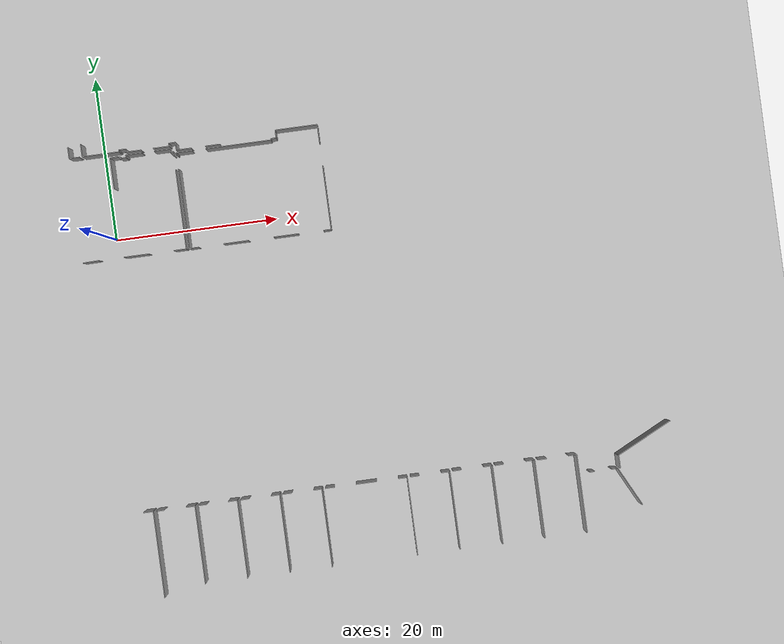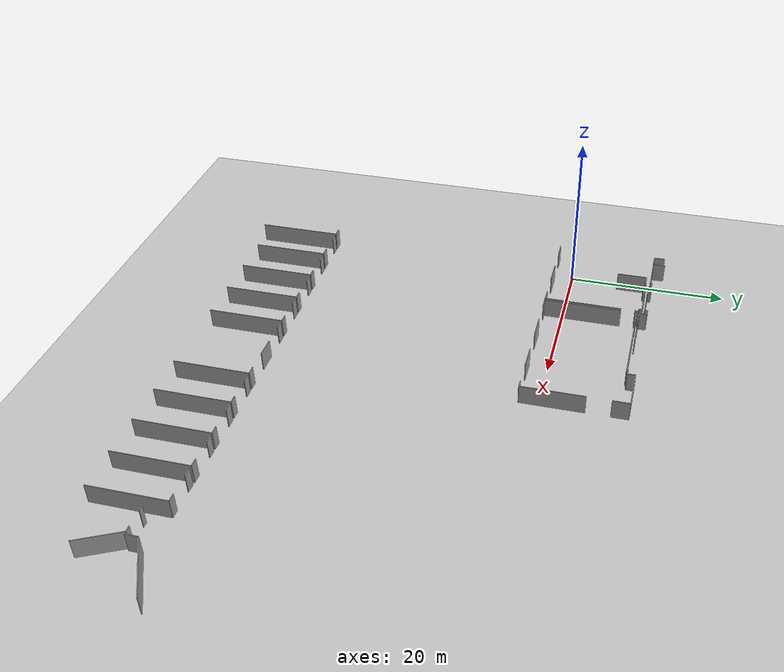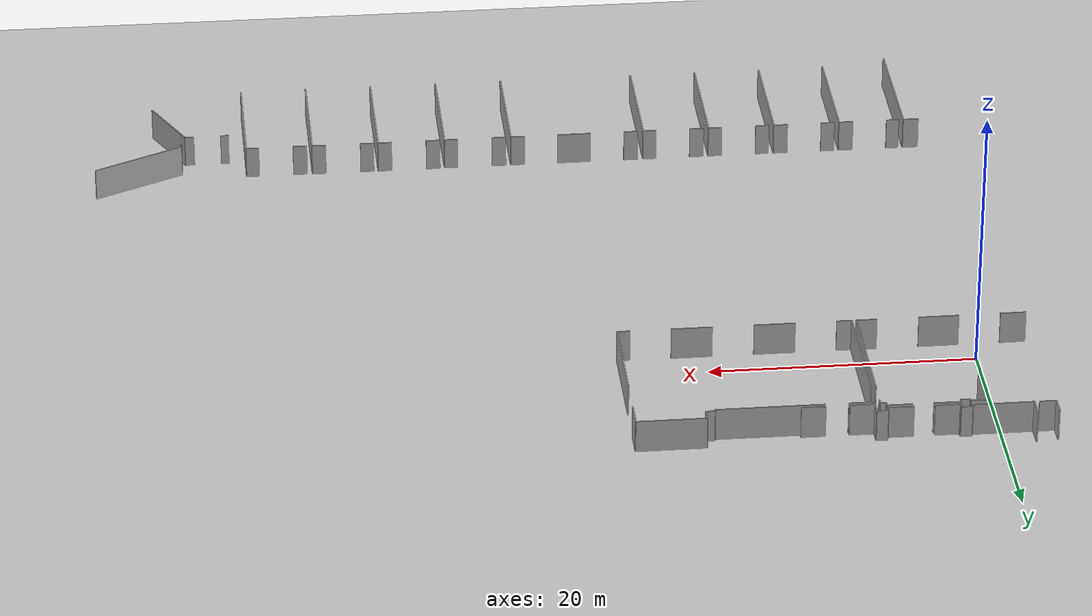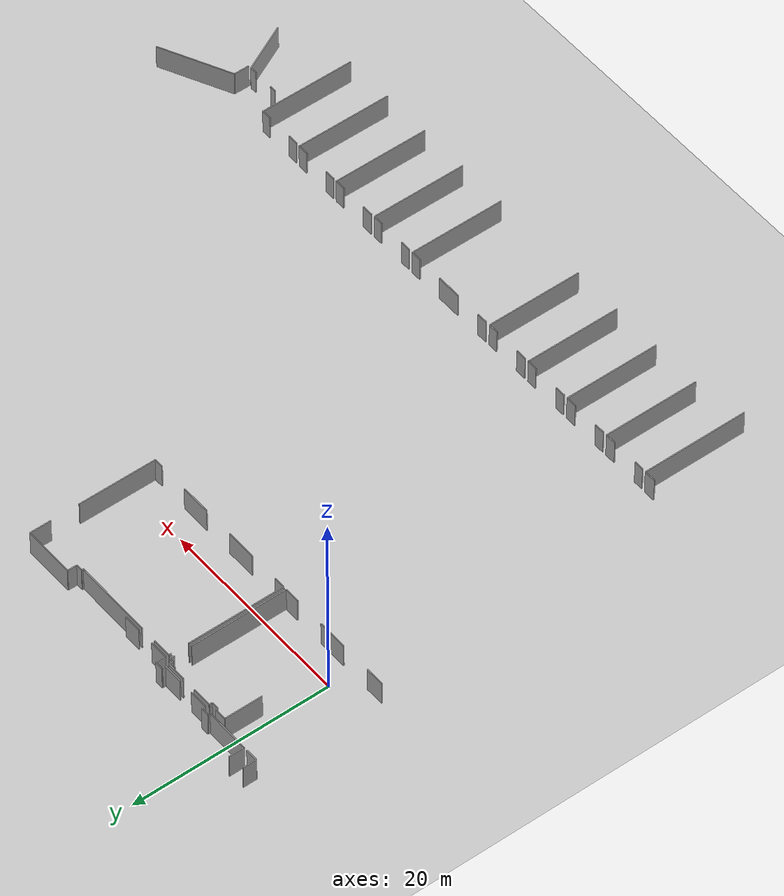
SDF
<sdf version="1.6">
 <world name="default">
  <model name="ground_plane">
   <static>1</static>
   <link name="link">
    <collision name="collision">
     <geometry><plane><normal>0 0 1</normal><size>100 100</size></plane></geometry>
     <surface><friction><ode><mu>100</mu><mu2>50</mu2></ode></friction></surface>
    </collision>
    <visual name="visual">
     <cast_shadows>0</cast_shadows>
     <geometry><plane><normal>0 0 1</normal><size>100 100</size></plane></geometry>
     <material>
      <script><uri>file://media/materials/scripts/gazebo.material</uri><name>Gazebo/Grey</name></script>
     </material>
    </visual>
   </link>
  </model>
  <model name="0510045926_A-40">
   <static>1</static>
   <link name="Wall_1117">
    <collision name="Wall_1117_Collision">
     <geometry><box><size>1.24505815983 0.1 2.5</size></box></geometry>
     <pose>0.622529079913 0 1.25 0 0 0</pose>
    </collision>
    <visual name="Wall_1117_Visual">
     <pose>0.622529079913 0 1.25 0 0 0</pose>
     <geometry><box><size>1.24505815983 0.1 2.5</size></box></geometry>
     <material>
      <script><uri>file://media/materials/scripts/gazebo.material</uri><name>Gazebo/Grey</name></script>
      <ambient>1 1 1 1</ambient>
     </material>
    </visual>
    <pose>131.193110932 -90.6598300578 0 0 0 3.14159265359</pose>
   </link>
   <link name="Wall_1118">
    <collision name="Wall_1118_Collision">
     <geometry><box><size>1.37552908626 0.1 2.5</size></box></geometry>
     <pose>0.68776454313 0 1.25 0 0 0</pose>
    </collision>
    <visual name="Wall_1118_Visual">
     <pose>0.68776454313 0 1.25 0 0 0</pose>
     <geometry><box><size>1.37552908626 0.1 2.5</size></box></geometry>
     <material>
      <script><uri>file://media/materials/scripts/gazebo.material</uri><name>Gazebo/Grey</name></script>
      <ambient>1 1 1 1</ambient>
     </material>
    </visual>
    <pose>129.948052772 -90.6598300578 0 0 0 1.57079632679</pose>
   </link>
   <link name="Wall_1195">
    <collision name="Wall_1195_Collision">
     <geometry><box><size>3.79584092193 0.1 2.5</size></box></geometry>
     <pose>1.89792046096 0 1.25 0 0 0</pose>
    </collision>
    <visual name="Wall_1195_Visual">
     <pose>1.89792046096 0 1.25 0 0 0</pose>
     <geometry><box><size>3.79584092193 0.1 2.5</size></box></geometry>
     <material>
      <script><uri>file://media/materials/scripts/gazebo.material</uri><name>Gazebo/Grey</name></script>
      <ambient>1 1 1 1</ambient>
     </material>
    </visual>
    <pose>134.901378956 -95.0443131556 0 0 0 1.57079632679</pose>
   </link>
   <link name="Wall_1196">
    <collision name="Wall_1196_Collision">
     <geometry><box><size>1.19022991059 0.1 2.5</size></box></geometry>
     <pose>0.595114955293 0 1.25 0 0 0</pose>
    </collision>
    <visual name="Wall_1196_Visual">
     <pose>0.595114955293 0 1.25 0 0 0</pose>
     <geometry><box><size>1.19022991059 0.1 2.5</size></box></geometry>
     <material>
      <script><uri>file://media/materials/scripts/gazebo.material</uri><name>Gazebo/Grey</name></script>
      <ambient>1 1 1 1</ambient>
     </material>
    </visual>
    <pose>134.901378956 -91.2484722337 0 0 0 0.0</pose>
   </link>
   <link name="Wall_1197">
    <collision name="Wall_1197_Collision">
     <geometry><box><size>0.208651948497 0.1 2.5</size></box></geometry>
     <pose>0.104325974248 0 1.25 0 0 0</pose>
    </collision>
    <visual name="Wall_1197_Visual">
     <pose>0.104325974248 0 1.25 0 0 0</pose>
     <geometry><box><size>0.208651948497 0.1 2.5</size></box></geometry>
     <material>
      <script><uri>file://media/materials/scripts/gazebo.material</uri><name>Gazebo/Grey</name></script>
      <ambient>1 1 1 1</ambient>
     </material>
    </visual>
    <pose>136.091608866 -91.2484722337 0 0 0 -1.57079632679</pose>
   </link>
   <link name="Wall_1198">
    <collision name="Wall_1198_Collision">
     <geometry><box><size>0.754396096026 0.1 2.5</size></box></geometry>
     <pose>0.377198048013 0 1.25 0 0 0</pose>
    </collision>
    <visual name="Wall_1198_Visual">
     <pose>0.377198048013 0 1.25 0 0 0</pose>
     <geometry><box><size>0.754396096026 0.1 2.5</size></box></geometry>
     <material>
      <script><uri>file://media/materials/scripts/gazebo.material</uri><name>Gazebo/Grey</name></script>
      <ambient>1 1 1 1</ambient>
     </material>
    </visual>
    <pose>136.091608866 -91.4571241822 0 0 0 0.0</pose>
   </link>
   <link name="Wall_1199">
    <collision name="Wall_1199_Collision">
     <geometry><box><size>0.312977922745 0.1 2.5</size></box></geometry>
     <pose>0.156488961373 0 1.25 0 0 0</pose>
    </collision>
    <visual name="Wall_1199_Visual">
     <pose>0.156488961373 0 1.25 0 0 0</pose>
     <geometry><box><size>0.312977922745 0.1 2.5</size></box></geometry>
     <material>
      <script><uri>file://media/materials/scripts/gazebo.material</uri><name>Gazebo/Grey</name></script>
      <ambient>1 1 1 1</ambient>
     </material>
    </visual>
    <pose>136.846004962 -91.4571241822 0 0 0 1.57079632679</pose>
   </link>
   <link name="Wall_1200">
    <collision name="Wall_1200_Collision">
     <geometry><box><size>1.97356313816 0.1 2.5</size></box></geometry>
     <pose>0.986781569078 0 1.25 0 0 0</pose>
    </collision>
    <visual name="Wall_1200_Visual">
     <pose>0.986781569078 0 1.25 0 0 0</pose>
     <geometry><box><size>1.97356313816 0.1 2.5</size></box></geometry>
     <material>
      <script><uri>file://media/materials/scripts/gazebo.material</uri><name>Gazebo/Grey</name></script>
      <ambient>1 1 1 1</ambient>
     </material>
    </visual>
    <pose>136.846004962 -91.1441462594 0 0 0 0.0</pose>
   </link>
   <link name="Wall_1201">
    <collision name="Wall_1201_Collision">
     <geometry><box><size>1.89360527468 0.1 2.5</size></box></geometry>
     <pose>0.94680263734 0 1.25 0 0 0</pose>
    </collision>
    <visual name="Wall_1201_Visual">
     <pose>0.94680263734 0 1.25 0 0 0</pose>
     <geometry><box><size>1.89360527468 0.1 2.5</size></box></geometry>
     <material>
      <script><uri>file://media/materials/scripts/gazebo.material</uri><name>Gazebo/Grey</name></script>
      <ambient>1 1 1 1</ambient>
     </material>
    </visual>
    <pose>140.317191575 -91.1441462594 0 0 0 0.0</pose>
   </link>
   <link name="Wall_1202">
    <collision name="Wall_1202_Collision">
     <geometry><box><size>0.370598351345 0.1 2.5</size></box></geometry>
     <pose>0.185299175673 0 1.25 0 0 0</pose>
    </collision>
    <visual name="Wall_1202_Visual">
     <pose>0.185299175673 0 1.25 0 0 0</pose>
     <geometry><box><size>0.370598351345 0.1 2.5</size></box></geometry>
     <material>
      <script><uri>file://media/materials/scripts/gazebo.material</uri><name>Gazebo/Grey</name></script>
      <ambient>1 1 1 1</ambient>
     </material>
    </visual>
    <pose>142.21079685 -91.1441462594 0 0 0 -1.57079632679</pose>
   </link>
   <link name="Wall_1203">
    <collision name="Wall_1203_Collision">
     <geometry><box><size>0.436595318023 0.1 2.5</size></box></geometry>
     <pose>0.218297659011 0 1.25 0 0 0</pose>
    </collision>
    <visual name="Wall_1203_Visual">
     <pose>0.218297659011 0 1.25 0 0 0</pose>
     <geometry><box><size>0.436595318023 0.1 2.5</size></box></geometry>
     <material>
      <script><uri>file://media/materials/scripts/gazebo.material</uri><name>Gazebo/Grey</name></script>
      <ambient>1 1 1 1</ambient>
     </material>
    </visual>
    <pose>142.21079685 -91.5147446108 0 0 0 0.0</pose>
   </link>
   <link name="Wall_1204">
    <collision name="Wall_1204_Collision">
     <geometry><box><size>0.495992588033 0.1 2.5</size></box></geometry>
     <pose>0.247996294016 0 1.25 0 0 0</pose>
    </collision>
    <visual name="Wall_1204_Visual">
     <pose>0.247996294016 0 1.25 0 0 0</pose>
     <geometry><box><size>0.495992588033 0.1 2.5</size></box></geometry>
     <material>
      <script><uri>file://media/materials/scripts/gazebo.material</uri><name>Gazebo/Grey</name></script>
      <ambient>1 1 1 1</ambient>
     </material>
    </visual>
    <pose>142.647392168 -91.5147446108 0 0 0 -1.57079632679</pose>
   </link>
   <link name="Wall_1205">
    <collision name="Wall_1205_Collision">
     <geometry><box><size>9.75079799217 0.1 2.5</size></box></geometry>
     <pose>4.87539899608 0 1.25 0 0 0</pose>
    </collision>
    <visual name="Wall_1205_Visual">
     <pose>4.87539899608 0 1.25 0 0 0</pose>
     <geometry><box><size>9.75079799217 0.1 2.5</size></box></geometry>
     <material>
      <script><uri>file://media/materials/scripts/gazebo.material</uri><name>Gazebo/Grey</name></script>
      <ambient>1 1 1 1</ambient>
     </material>
    </visual>
    <pose>142.647392168 -93.7284351738 0 0 0 -1.57079632679</pose>
   </link>
   <link name="Wall_1206">
    <collision name="Wall_1206_Collision">
     <geometry><box><size>1.53189113039 0.1 2.5</size></box></geometry>
     <pose>0.765945565194 0 1.25 0 0 0</pose>
    </collision>
    <visual name="Wall_1206_Visual">
     <pose>0.765945565194 0 1.25 0 0 0</pose>
     <geometry><box><size>1.53189113039 0.1 2.5</size></box></geometry>
     <material>
      <script><uri>file://media/materials/scripts/gazebo.material</uri><name>Gazebo/Grey</name></script>
      <ambient>1 1 1 1</ambient>
     </material>
    </visual>
    <pose>142.647392168 -103.479233166 0 0 0 3.14159265359</pose>
   </link>
   <link name="Wall_1207">
    <collision name="Wall_1207_Collision">
     <geometry><box><size>3.02037656346 0.1 2.5</size></box></geometry>
     <pose>1.51018828173 0 1.25 0 0 0</pose>
    </collision>
    <visual name="Wall_1207_Visual">
     <pose>1.51018828173 0 1.25 0 0 0</pose>
     <geometry><box><size>3.02037656346 0.1 2.5</size></box></geometry>
     <material>
      <script><uri>file://media/materials/scripts/gazebo.material</uri><name>Gazebo/Grey</name></script>
      <ambient>1 1 1 1</ambient>
     </material>
    </visual>
    <pose>137.999682707 -103.479233166 0 0 0 3.14159265359</pose>
   </link>
   <link name="Wall_1208">
    <collision name="Wall_1208_Collision">
     <geometry><box><size>1.9408495295 0.1 2.5</size></box></geometry>
     <pose>0.970424764751 0 1.25 0 0 0</pose>
    </collision>
    <visual name="Wall_1208_Visual">
     <pose>0.970424764751 0 1.25 0 0 0</pose>
     <geometry><box><size>1.9408495295 0.1 2.5</size></box></geometry>
     <material>
      <script><uri>file://media/materials/scripts/gazebo.material</uri><name>Gazebo/Grey</name></script>
      <ambient>1 1 1 1</ambient>
     </material>
    </visual>
    <pose>131.873895027 -103.479233166 0 0 0 -3.1244589478</pose>
   </link>
   <link name="Wall_1209">
    <collision name="Wall_1209_Collision">
     <geometry><box><size>9.78328880653 0.1 2.5</size></box></geometry>
     <pose>4.89164440327 0 1.25 0 0 0</pose>
    </collision>
    <visual name="Wall_1209_Visual">
     <pose>4.89164440327 0 1.25 0 0 0</pose>
     <geometry><box><size>9.78328880653 0.1 2.5</size></box></geometry>
     <material>
      <script><uri>file://media/materials/scripts/gazebo.material</uri><name>Gazebo/Grey</name></script>
      <ambient>1 1 1 1</ambient>
     </material>
    </visual>
    <pose>143.003268119 -103.488117373 0 0 0 1.57079632679</pose>
   </link>
   <link name="Wall_1210">
    <collision name="Wall_1210_Collision">
     <geometry><box><size>0.263480197737 0.1 2.5</size></box></geometry>
     <pose>0.131740098869 0 1.25 0 0 0</pose>
    </collision>
    <visual name="Wall_1210_Visual">
     <pose>0.131740098869 0 1.25 0 0 0</pose>
     <geometry><box><size>0.263480197737 0.1 2.5</size></box></geometry>
     <material>
      <script><uri>file://media/materials/scripts/gazebo.material</uri><name>Gazebo/Grey</name></script>
      <ambient>1 1 1 1</ambient>
     </material>
    </visual>
    <pose>143.003268119 -91.9531167702 0 0 0 1.57079632679</pose>
   </link>
   <link name="Wall_1211">
    <collision name="Wall_1211_Collision">
     <geometry><box><size>1.92863443392 0.1 2.5</size></box></geometry>
     <pose>0.964317216959 0 1.25 0 0 0</pose>
    </collision>
    <visual name="Wall_1211_Visual">
     <pose>0.964317216959 0 1.25 0 0 0</pose>
     <geometry><box><size>1.92863443392 0.1 2.5</size></box></geometry>
     <material>
      <script><uri>file://media/materials/scripts/gazebo.material</uri><name>Gazebo/Grey</name></script>
      <ambient>1 1 1 1</ambient>
     </material>
    </visual>
    <pose>143.003268119 -91.6896365725 0 0 0 0.0</pose>
   </link>
   <link name="Wall_1212">
    <collision name="Wall_1212_Collision">
     <geometry><box><size>8.01939295482 0.1 2.5</size></box></geometry>
     <pose>4.00969647741 0 1.25 0 0 0</pose>
    </collision>
    <visual name="Wall_1212_Visual">
     <pose>4.00969647741 0 1.25 0 0 0</pose>
     <geometry><box><size>8.01939295482 0.1 2.5</size></box></geometry>
     <material>
      <script><uri>file://media/materials/scripts/gazebo.material</uri><name>Gazebo/Grey</name></script>
      <ambient>1 1 1 1</ambient>
     </material>
    </visual>
    <pose>146.630816776 -91.6896365725 0 0 0 0.0</pose>
   </link>
   <link name="Wall_1213">
    <collision name="Wall_1213_Collision">
     <geometry><box><size>0.175653465158 0.1 2.5</size></box></geometry>
     <pose>0.087826732579 0 1.25 0 0 0</pose>
    </collision>
    <visual name="Wall_1213_Visual">
     <pose>0.087826732579 0 1.25 0 0 0</pose>
     <geometry><box><size>0.175653465158 0.1 2.5</size></box></geometry>
     <material>
      <script><uri>file://media/materials/scripts/gazebo.material</uri><name>Gazebo/Grey</name></script>
      <ambient>1 1 1 1</ambient>
     </material>
    </visual>
    <pose>154.650209731 -91.6896365725 0 0 0 1.57079632679</pose>
   </link>
   <link name="Wall_1214">
    <collision name="Wall_1214_Collision">
     <geometry><box><size>0.664284853062 0.1 2.5</size></box></geometry>
     <pose>0.332142426531 0 1.25 0 0 0</pose>
    </collision>
    <visual name="Wall_1214_Visual">
     <pose>0.332142426531 0 1.25 0 0 0</pose>
     <geometry><box><size>0.664284853062 0.1 2.5</size></box></geometry>
     <material>
      <script><uri>file://media/materials/scripts/gazebo.material</uri><name>Gazebo/Grey</name></script>
      <ambient>1 1 1 1</ambient>
     </material>
    </visual>
    <pose>154.650209731 -91.5139831073 0 0 0 0.0</pose>
   </link>
   <link name="Wall_1215">
    <collision name="Wall_1215_Collision">
     <geometry><box><size>0.944771961443 0.1 2.5</size></box></geometry>
     <pose>0.472385980721 0 1.25 0 0 0</pose>
    </collision>
    <visual name="Wall_1215_Visual">
     <pose>0.472385980721 0 1.25 0 0 0</pose>
     <geometry><box><size>0.944771961443 0.1 2.5</size></box></geometry>
     <material>
      <script><uri>file://media/materials/scripts/gazebo.material</uri><name>Gazebo/Grey</name></script>
      <ambient>1 1 1 1</ambient>
     </material>
    </visual>
    <pose>155.314494584 -91.5139831073 0 0 0 1.57079632679</pose>
   </link>
   <link name="Wall_1216">
    <collision name="Wall_1216_Collision">
     <geometry><box><size>5.17390835306 0.1 2.5</size></box></geometry>
     <pose>2.58695417653 0 1.25 0 0 0</pose>
    </collision>
    <visual name="Wall_1216_Visual">
     <pose>2.58695417653 0 1.25 0 0 0</pose>
     <geometry><box><size>5.17390835306 0.1 2.5</size></box></geometry>
     <material>
      <script><uri>file://media/materials/scripts/gazebo.material</uri><name>Gazebo/Grey</name></script>
      <ambient>1 1 1 1</ambient>
     </material>
    </visual>
    <pose>155.314494584 -90.5692111459 0 0 0 0.0</pose>
   </link>
   <link name="Wall_1217">
    <collision name="Wall_1217_Collision">
     <geometry><box><size>2.10682624395 0.1 2.5</size></box></geometry>
     <pose>1.05341312197 0 1.25 0 0 0</pose>
    </collision>
    <visual name="Wall_1217_Visual">
     <pose>1.05341312197 0 1.25 0 0 0</pose>
     <geometry><box><size>2.10682624395 0.1 2.5</size></box></geometry>
     <material>
      <script><uri>file://media/materials/scripts/gazebo.material</uri><name>Gazebo/Grey</name></script>
      <ambient>1 1 1 1</ambient>
     </material>
    </visual>
    <pose>160.488402937 -90.5692111459 0 0 0 -1.57079632679</pose>
   </link>
   <link name="Wall_1218">
    <collision name="Wall_1218_Collision">
     <geometry><box><size>7.86963060736 0.1 2.5</size></box></geometry>
     <pose>3.93481530368 0 1.25 0 0 0</pose>
    </collision>
    <visual name="Wall_1218_Visual">
     <pose>3.93481530368 0 1.25 0 0 0</pose>
     <geometry><box><size>7.86963060736 0.1 2.5</size></box></geometry>
     <material>
      <script><uri>file://media/materials/scripts/gazebo.material</uri><name>Gazebo/Grey</name></script>
      <ambient>1 1 1 1</ambient>
     </material>
    </visual>
    <pose>160.488402937 -95.6050335379 0 0 0 -1.57079632679</pose>
   </link>
   <link name="Wall_1219">
    <collision name="Wall_1219_Collision">
     <geometry><box><size>0.945533464904 0.1 2.5</size></box></geometry>
     <pose>0.472766732452 0 1.25 0 0 0</pose>
    </collision>
    <visual name="Wall_1219_Visual">
     <pose>0.472766732452 0 1.25 0 0 0</pose>
     <geometry><box><size>0.945533464904 0.1 2.5</size></box></geometry>
     <material>
      <script><uri>file://media/materials/scripts/gazebo.material</uri><name>Gazebo/Grey</name></script>
      <ambient>1 1 1 1</ambient>
     </material>
    </visual>
    <pose>160.488402937 -103.474664145 0 0 0 3.14159265359</pose>
   </link>
   <link name="Wall_1220">
    <collision name="Wall_1220_Collision">
     <geometry><box><size>3.07444330924 0.1 2.5</size></box></geometry>
     <pose>1.53722165462 0 1.25 0 0 0</pose>
    </collision>
    <visual name="Wall_1220_Visual">
     <pose>1.53722165462 0 1.25 0 0 0</pose>
     <geometry><box><size>3.07444330924 0.1 2.5</size></box></geometry>
     <material>
      <script><uri>file://media/materials/scripts/gazebo.material</uri><name>Gazebo/Grey</name></script>
      <ambient>1 1 1 1</ambient>
     </material>
    </visual>
    <pose>156.478071873 -103.474664145 0 0 0 3.14159265359</pose>
   </link>
   <link name="Wall_1221">
    <collision name="Wall_1221_Collision">
     <geometry><box><size>3.07698165411 0.1 2.5</size></box></geometry>
     <pose>1.53849082706 0 1.25 0 0 0</pose>
    </collision>
    <visual name="Wall_1221_Visual">
     <pose>1.53849082706 0 1.25 0 0 0</pose>
     <geometry><box><size>3.07698165411 0.1 2.5</size></box></geometry>
     <material>
      <script><uri>file://media/materials/scripts/gazebo.material</uri><name>Gazebo/Grey</name></script>
      <ambient>1 1 1 1</ambient>
     </material>
    </visual>
    <pose>150.30177113 -103.474664145 0 0 0 3.14159265359</pose>
   </link>
   <link name="Wall_1222">
    <collision name="Wall_1222_Collision">
     <geometry><box><size>1.13928861228 0.1 2.5</size></box></geometry>
     <pose>0.56964430614 0 1.25 0 0 0</pose>
    </collision>
    <visual name="Wall_1222_Visual">
     <pose>0.56964430614 0 1.25 0 0 0</pose>
     <geometry><box><size>1.13928861228 0.1 2.5</size></box></geometry>
     <material>
      <script><uri>file://media/materials/scripts/gazebo.material</uri><name>Gazebo/Grey</name></script>
      <ambient>1 1 1 1</ambient>
     </material>
    </visual>
    <pose>144.142477298 -103.474664145 0 0 0 -3.12978393335</pose>
   </link>
   <link name="Wall_1263">
    <collision name="Wall_1263_Collision">
     <geometry><box><size>1.80146335582 0.1 2.5</size></box></geometry>
     <pose>0.900731677909 0 1.25 0 0 0</pose>
    </collision>
    <visual name="Wall_1263_Visual">
     <pose>0.900731677909 0 1.25 0 0 0</pose>
     <geometry><box><size>1.80146335582 0.1 2.5</size></box></geometry>
     <material>
      <script><uri>file://media/materials/scripts/gazebo.material</uri><name>Gazebo/Grey</name></script>
      <ambient>1 1 1 1</ambient>
     </material>
    </visual>
    <pose>148.4107042 -91.3743741393 0 0 0 3.14159265359</pose>
   </link>
   <link name="Wall_1264">
    <collision name="Wall_1264_Collision">
     <geometry><box><size>1.83395417018 0.1 2.5</size></box></geometry>
     <pose>0.916977085092 0 1.25 0 0 0</pose>
    </collision>
    <visual name="Wall_1264_Visual">
     <pose>0.916977085092 0 1.25 0 0 0</pose>
     <geometry><box><size>1.83395417018 0.1 2.5</size></box></geometry>
     <material>
      <script><uri>file://media/materials/scripts/gazebo.material</uri><name>Gazebo/Grey</name></script>
      <ambient>1 1 1 1</ambient>
     </material>
    </visual>
    <pose>144.883166331 -91.3743741393 0 0 0 3.14159265359</pose>
   </link>
   <link name="Wall_1265">
    <collision name="Wall_1265_Collision">
     <geometry><box><size>0.95137165811 0.1 2.5</size></box></geometry>
     <pose>0.475685829055 0 1.25 0 0 0</pose>
    </collision>
    <visual name="Wall_1265_Visual">
     <pose>0.475685829055 0 1.25 0 0 0</pose>
     <geometry><box><size>0.95137165811 0.1 2.5</size></box></geometry>
     <material>
      <script><uri>file://media/materials/scripts/gazebo.material</uri><name>Gazebo/Grey</name></script>
      <ambient>1 1 1 1</ambient>
     </material>
    </visual>
    <pose>143.049212161 -91.3743741393 0 0 0 1.57079632679</pose>
   </link>
   <link name="Wall_1266">
    <collision name="Wall_1266_Collision">
     <geometry><box><size>0.818362386806 0.1 2.5</size></box></geometry>
     <pose>0.409181193403 0 1.25 0 0 0</pose>
    </collision>
    <visual name="Wall_1266_Visual">
     <pose>0.409181193403 0 1.25 0 0 0</pose>
     <geometry><box><size>0.818362386806 0.1 2.5</size></box></geometry>
     <material>
      <script><uri>file://media/materials/scripts/gazebo.material</uri><name>Gazebo/Grey</name></script>
      <ambient>1 1 1 1</ambient>
     </material>
    </visual>
    <pose>143.049212161 -90.4230024812 0 0 0 3.14159265359</pose>
   </link>
   <link name="Wall_1267">
    <collision name="Wall_1267_Collision">
     <geometry><box><size>0.370090682371 0.1 2.5</size></box></geometry>
     <pose>0.185045341185 0 1.25 0 0 0</pose>
    </collision>
    <visual name="Wall_1267_Visual">
     <pose>0.185045341185 0 1.25 0 0 0</pose>
     <geometry><box><size>0.370090682371 0.1 2.5</size></box></geometry>
     <material>
      <script><uri>file://media/materials/scripts/gazebo.material</uri><name>Gazebo/Grey</name></script>
      <ambient>1 1 1 1</ambient>
     </material>
    </visual>
    <pose>142.230849774 -90.4230024812 0 0 0 -1.57079632679</pose>
   </link>
   <link name="Wall_1268">
    <collision name="Wall_1268_Collision">
     <geometry><box><size>1.94995653084 0.1 2.5</size></box></geometry>
     <pose>0.974978265422 0 1.25 0 0 0</pose>
    </collision>
    <visual name="Wall_1268_Visual">
     <pose>0.974978265422 0 1.25 0 0 0</pose>
     <geometry><box><size>1.94995653084 0.1 2.5</size></box></geometry>
     <material>
      <script><uri>file://media/materials/scripts/gazebo.material</uri><name>Gazebo/Grey</name></script>
      <ambient>1 1 1 1</ambient>
     </material>
    </visual>
    <pose>142.230849774 -90.7930931636 0 0 0 3.14159265359</pose>
   </link>
   <link name="Wall_1269">
    <collision name="Wall_1269_Collision">
     <geometry><box><size>1.85502243262 0.1 2.5</size></box></geometry>
     <pose>0.927511216311 0 1.25 0 0 0</pose>
    </collision>
    <visual name="Wall_1269_Visual">
     <pose>0.927511216311 0 1.25 0 0 0</pose>
     <geometry><box><size>1.85502243262 0.1 2.5</size></box></geometry>
     <material>
      <script><uri>file://media/materials/scripts/gazebo.material</uri><name>Gazebo/Grey</name></script>
      <ambient>1 1 1 1</ambient>
     </material>
    </visual>
    <pose>138.762709175 -90.7930931636 0 0 0 3.14159265359</pose>
   </link>
   <link name="Wall_1270">
    <collision name="Wall_1270_Collision">
     <geometry><box><size>0.365521661601 0.1 2.5</size></box></geometry>
     <pose>0.1827608308 0 1.25 0 0 0</pose>
    </collision>
    <visual name="Wall_1270_Visual">
     <pose>0.1827608308 0 1.25 0 0 0</pose>
     <geometry><box><size>0.365521661601 0.1 2.5</size></box></geometry>
     <material>
      <script><uri>file://media/materials/scripts/gazebo.material</uri><name>Gazebo/Grey</name></script>
      <ambient>1 1 1 1</ambient>
     </material>
    </visual>
    <pose>136.907686743 -90.7930931636 0 0 0 1.57079632679</pose>
   </link>
   <link name="Wall_1271">
    <collision name="Wall_1271_Collision">
     <geometry><box><size>0.825469752448 0.1 2.5</size></box></geometry>
     <pose>0.412734876224 0 1.25 0 0 0</pose>
    </collision>
    <visual name="Wall_1271_Visual">
     <pose>0.412734876224 0 1.25 0 0 0</pose>
     <geometry><box><size>0.825469752448 0.1 2.5</size></box></geometry>
     <material>
      <script><uri>file://media/materials/scripts/gazebo.material</uri><name>Gazebo/Grey</name></script>
      <ambient>1 1 1 1</ambient>
     </material>
    </visual>
    <pose>136.907686743 -90.427571502 0 0 0 3.14159265359</pose>
   </link>
   <link name="Wall_1272">
    <collision name="Wall_1272_Collision">
     <geometry><box><size>0.223120514269 0.1 2.5</size></box></geometry>
     <pose>0.111560257134 0 1.25 0 0 0</pose>
    </collision>
    <visual name="Wall_1272_Visual">
     <pose>0.111560257134 0 1.25 0 0 0</pose>
     <geometry><box><size>0.223120514269 0.1 2.5</size></box></geometry>
     <material>
      <script><uri>file://media/materials/scripts/gazebo.material</uri><name>Gazebo/Grey</name></script>
      <ambient>1 1 1 1</ambient>
     </material>
    </visual>
    <pose>136.08221699 -90.427571502 0 0 0 -1.57079632679</pose>
   </link>
   <link name="Wall_1273">
    <collision name="Wall_1273_Collision">
     <geometry><box><size>4.53272243833 0.1 2.5</size></box></geometry>
     <pose>2.26636121917 0 1.25 0 0 0</pose>
    </collision>
    <visual name="Wall_1273_Visual">
     <pose>2.26636121917 0 1.25 0 0 0</pose>
     <geometry><box><size>4.53272243833 0.1 2.5</size></box></geometry>
     <material>
      <script><uri>file://media/materials/scripts/gazebo.material</uri><name>Gazebo/Grey</name></script>
      <ambient>1 1 1 1</ambient>
     </material>
    </visual>
    <pose>136.08221699 -90.6506920163 0 0 0 3.14159265359</pose>
   </link>
   <link name="Wall_1274">
    <collision name="Wall_1274_Collision">
     <geometry><box><size>1.5336679718 0.1 2.5</size></box></geometry>
     <pose>0.766833985899 0 1.25 0 0 0</pose>
    </collision>
    <visual name="Wall_1274_Visual">
     <pose>0.766833985899 0 1.25 0 0 0</pose>
     <geometry><box><size>1.5336679718 0.1 2.5</size></box></geometry>
     <material>
      <script><uri>file://media/materials/scripts/gazebo.material</uri><name>Gazebo/Grey</name></script>
      <ambient>1 1 1 1</ambient>
     </material>
    </visual>
    <pose>131.549494552 -90.6506920163 0 0 0 1.57079632679</pose>
   </link>
   <link name="Wall_1912">
    <collision name="Wall_1912_Collision">
     <geometry><box><size>1.20495231085 0.1 2.5</size></box></geometry>
     <pose>0.602476155423 0 1.25 0 0 0</pose>
    </collision>
    <visual name="Wall_1912_Visual">
     <pose>0.602476155423 0 1.25 0 0 0</pose>
     <geometry><box><size>1.20495231085 0.1 2.5</size></box></geometry>
     <material>
      <script><uri>file://media/materials/scripts/gazebo.material</uri><name>Gazebo/Grey</name></script>
      <ambient>1 1 1 1</ambient>
     </material>
    </visual>
    <pose>133.177842788 -134.67853766 0 0 0 0.0</pose>
   </link>
   <link name="Wall_1913">
    <collision name="Wall_1913_Collision">
     <geometry><box><size>10.6412493733 0.1 2.5</size></box></geometry>
     <pose>5.32062468667 0 1.25 0 0 0</pose>
    </collision>
    <visual name="Wall_1913_Visual">
     <pose>5.32062468667 0 1.25 0 0 0</pose>
     <geometry><box><size>10.6412493733 0.1 2.5</size></box></geometry>
     <material>
      <script><uri>file://media/materials/scripts/gazebo.material</uri><name>Gazebo/Grey</name></script>
      <ambient>1 1 1 1</ambient>
     </material>
    </visual>
    <pose>134.382795098 -134.67853766 0 0 0 -1.57079632679</pose>
   </link>
   <link name="Wall_1919">
    <collision name="Wall_1919_Collision">
     <geometry><box><size>0.985639313885 0.1 2.5</size></box></geometry>
     <pose>0.492819656943 0 1.25 0 0 0</pose>
    </collision>
    <visual name="Wall_1919_Visual">
     <pose>0.492819656943 0 1.25 0 0 0</pose>
     <geometry><box><size>0.985639313885 0.1 2.5</size></box></geometry>
     <material>
      <script><uri>file://media/materials/scripts/gazebo.material</uri><name>Gazebo/Grey</name></script>
      <ambient>1 1 1 1</ambient>
     </material>
    </visual>
    <pose>134.753647284 -134.695798405 0 0 0 0.0</pose>
   </link>
   <link name="Wall_1920">
    <collision name="Wall_1920_Collision">
     <geometry><box><size>1.11128738506 0.1 2.5</size></box></geometry>
     <pose>0.55564369253 0 1.25 0 0 0</pose>
    </collision>
    <visual name="Wall_1920_Visual">
     <pose>0.55564369253 0 1.25 0 0 0</pose>
     <geometry><box><size>1.11128738506 0.1 2.5</size></box></geometry>
     <material>
      <script><uri>file://media/materials/scripts/gazebo.material</uri><name>Gazebo/Grey</name></script>
      <ambient>1 1 1 1</ambient>
     </material>
    </visual>
    <pose>138.409117735 -134.695798405 0 0 0 0.0</pose>
   </link>
   <link name="Wall_1921">
    <collision name="Wall_1921_Collision">
     <geometry><box><size>9.59849729984 0.1 2.5</size></box></geometry>
     <pose>4.79924864992 0 1.25 0 0 0</pose>
    </collision>
    <visual name="Wall_1921_Visual">
     <pose>4.79924864992 0 1.25 0 0 0</pose>
     <geometry><box><size>9.59849729984 0.1 2.5</size></box></geometry>
     <material>
      <script><uri>file://media/materials/scripts/gazebo.material</uri><name>Gazebo/Grey</name></script>
      <ambient>1 1 1 1</ambient>
     </material>
    </visual>
    <pose>139.52040512 -134.695798405 0 0 0 -1.57079632679</pose>
   </link>
   <link name="Wall_1925">
    <collision name="Wall_1925_Collision">
     <geometry><box><size>1.0607743221 0.1 2.5</size></box></geometry>
     <pose>0.530387161052 0 1.25 0 0 0</pose>
    </collision>
    <visual name="Wall_1925_Visual">
     <pose>0.530387161052 0 1.25 0 0 0</pose>
     <geometry><box><size>1.0607743221 0.1 2.5</size></box></geometry>
     <material>
      <script><uri>file://media/materials/scripts/gazebo.material</uri><name>Gazebo/Grey</name></script>
      <ambient>1 1 1 1</ambient>
     </material>
    </visual>
    <pose>139.901410685 -134.688691039 0 0 0 0.0</pose>
   </link>
   <link name="Wall_1926">
    <collision name="Wall_1926_Collision">
     <geometry><box><size>1.10544919185 0.1 2.5</size></box></geometry>
     <pose>0.552724595927 0 1.25 0 0 0</pose>
    </collision>
    <visual name="Wall_1926_Visual">
     <pose>0.552724595927 0 1.25 0 0 0</pose>
     <geometry><box><size>1.10544919185 0.1 2.5</size></box></geometry>
     <material>
      <script><uri>file://media/materials/scripts/gazebo.material</uri><name>Gazebo/Grey</name></script>
      <ambient>1 1 1 1</ambient>
     </material>
    </visual>
    <pose>143.63125464 -134.688691039 0 0 0 0.0</pose>
   </link>
   <link name="Wall_1927">
    <collision name="Wall_1927_Collision">
     <geometry><box><size>9.59468978253 0.1 2.5</size></box></geometry>
     <pose>4.79734489126 0 1.25 0 0 0</pose>
    </collision>
    <visual name="Wall_1927_Visual">
     <pose>4.79734489126 0 1.25 0 0 0</pose>
     <geometry><box><size>9.59468978253 0.1 2.5</size></box></geometry>
     <material>
      <script><uri>file://media/materials/scripts/gazebo.material</uri><name>Gazebo/Grey</name></script>
      <ambient>1 1 1 1</ambient>
     </material>
    </visual>
    <pose>144.736703832 -134.688691039 0 0 0 -1.57079632679</pose>
   </link>
   <link name="Wall_1931">
    <collision name="Wall_1931_Collision">
     <geometry><box><size>1.05823597723 0.1 2.5</size></box></geometry>
     <pose>0.529117988616 0 1.25 0 0 0</pose>
    </collision>
    <visual name="Wall_1931_Visual">
     <pose>0.529117988616 0 1.25 0 0 0</pose>
     <geometry><box><size>1.05823597723 0.1 2.5</size></box></geometry>
     <material>
      <script><uri>file://media/materials/scripts/gazebo.material</uri><name>Gazebo/Grey</name></script>
      <ambient>1 1 1 1</ambient>
     </material>
    </visual>
    <pose>145.130654956 -134.692244722 0 0 0 0.0</pose>
   </link>
   <link name="Wall_1932">
    <collision name="Wall_1932_Collision">
     <geometry><box><size>1.05848981172 0.1 2.5</size></box></geometry>
     <pose>0.529244905859 0 1.25 0 0 0</pose>
    </collision>
    <visual name="Wall_1932_Visual">
     <pose>0.529244905859 0 1.25 0 0 0</pose>
     <geometry><box><size>1.05848981172 0.1 2.5</size></box></geometry>
     <material>
      <script><uri>file://media/materials/scripts/gazebo.material</uri><name>Gazebo/Grey</name></script>
      <ambient>1 1 1 1</ambient>
     </material>
    </visual>
    <pose>148.886643864 -134.692244722 0 0 0 0.0</pose>
   </link>
   <link name="Wall_1933">
    <collision name="Wall_1933_Collision">
     <geometry><box><size>9.59545128599 0.1 2.5</size></box></geometry>
     <pose>4.79772564299 0 1.25 0 0 0</pose>
    </collision>
    <visual name="Wall_1933_Visual">
     <pose>4.79772564299 0 1.25 0 0 0</pose>
     <geometry><box><size>9.59545128599 0.1 2.5</size></box></geometry>
     <material>
      <script><uri>file://media/materials/scripts/gazebo.material</uri><name>Gazebo/Grey</name></script>
      <ambient>1 1 1 1</ambient>
     </material>
    </visual>
    <pose>149.945133676 -134.692244722 0 0 0 -1.57079632679</pose>
   </link>
   <link name="Wall_1937">
    <collision name="Wall_1937_Collision">
     <geometry><box><size>1.11306422647 0.1 2.5</size></box></geometry>
     <pose>0.556532113236 0 1.25 0 0 0</pose>
    </collision>
    <visual name="Wall_1937_Visual">
     <pose>0.556532113236 0 1.25 0 0 0</pose>
     <geometry><box><size>1.11306422647 0.1 2.5</size></box></geometry>
     <material>
      <script><uri>file://media/materials/scripts/gazebo.material</uri><name>Gazebo/Grey</name></script>
      <ambient>1 1 1 1</ambient>
     </material>
    </visual>
    <pose>150.336038786 -134.687675701 0 0 0 0.0</pose>
   </link>
   <link name="Wall_1938">
    <collision name="Wall_1938_Collision">
     <geometry><box><size>1.02574516287 0.1 2.5</size></box></geometry>
     <pose>0.512872581433 0 1.25 0 0 0</pose>
    </collision>
    <visual name="Wall_1938_Visual">
     <pose>0.512872581433 0 1.25 0 0 0</pose>
     <geometry><box><size>1.02574516287 0.1 2.5</size></box></geometry>
     <material>
      <script><uri>file://media/materials/scripts/gazebo.material</uri><name>Gazebo/Grey</name></script>
      <ambient>1 1 1 1</ambient>
     </material>
    </visual>
    <pose>154.120964825 -134.687675701 0 0 0 0.0</pose>
   </link>
   <link name="Wall_1939">
    <collision name="Wall_1939_Collision">
     <geometry><box><size>9.61677338292 0.1 2.5</size></box></geometry>
     <pose>4.80838669146 0 1.25 0 0 0</pose>
    </collision>
    <visual name="Wall_1939_Visual">
     <pose>4.80838669146 0 1.25 0 0 0</pose>
     <geometry><box><size>9.61677338292 0.1 2.5</size></box></geometry>
     <material>
      <script><uri>file://media/materials/scripts/gazebo.material</uri><name>Gazebo/Grey</name></script>
      <ambient>1 1 1 1</ambient>
     </material>
    </visual>
    <pose>155.146709988 -134.687675701 0 0 0 -1.57079632679</pose>
   </link>
   <link name="Wall_1943">
    <collision name="Wall_1943_Collision">
     <geometry><box><size>1.1204254266 0.1 2.5</size></box></geometry>
     <pose>0.5602127133 0 1.25 0 0 0</pose>
    </collision>
    <visual name="Wall_1943_Visual">
     <pose>0.5602127133 0 1.25 0 0 0</pose>
     <geometry><box><size>1.1204254266 0.1 2.5</size></box></geometry>
     <material>
      <script><uri>file://media/materials/scripts/gazebo.material</uri><name>Gazebo/Grey</name></script>
      <ambient>1 1 1 1</ambient>
     </material>
    </visual>
    <pose>155.571882754 -134.670922625 0 0 0 0.0</pose>
   </link>
   <link name="Wall_1944">
    <collision name="Wall_1944_Collision">
     <geometry><box><size>2.56423598992 0.1 2.5</size></box></geometry>
     <pose>1.28211799496 0 1.25 0 0 0</pose>
    </collision>
    <visual name="Wall_1944_Visual">
     <pose>1.28211799496 0 1.25 0 0 0</pose>
     <geometry><box><size>2.56423598992 0.1 2.5</size></box></geometry>
     <material>
      <script><uri>file://media/materials/scripts/gazebo.material</uri><name>Gazebo/Grey</name></script>
      <ambient>1 1 1 1</ambient>
     </material>
    </visual>
    <pose>159.358839469 -134.670922625 0 0 0 0.0</pose>
   </link>
   <link name="Wall_1945">
    <collision name="Wall_1945_Collision">
     <geometry><box><size>1.08235025352 0.1 2.5</size></box></geometry>
     <pose>0.541175126759 0 1.25 0 0 0</pose>
    </collision>
    <visual name="Wall_1945_Visual">
     <pose>0.541175126759 0 1.25 0 0 0</pose>
     <geometry><box><size>1.08235025352 0.1 2.5</size></box></geometry>
     <material>
      <script><uri>file://media/materials/scripts/gazebo.material</uri><name>Gazebo/Grey</name></script>
      <ambient>1 1 1 1</ambient>
     </material>
    </visual>
    <pose>164.572853671 -134.670922625 0 0 0 0.0</pose>
   </link>
   <link name="Wall_1946">
    <collision name="Wall_1946_Collision">
     <geometry><box><size>9.60687383791 0.1 2.5</size></box></geometry>
     <pose>4.80343691896 0 1.25 0 0 0</pose>
    </collision>
    <visual name="Wall_1946_Visual">
     <pose>4.80343691896 0 1.25 0 0 0</pose>
     <geometry><box><size>9.60687383791 0.1 2.5</size></box></geometry>
     <material>
      <script><uri>file://media/materials/scripts/gazebo.material</uri><name>Gazebo/Grey</name></script>
      <ambient>1 1 1 1</ambient>
     </material>
    </visual>
    <pose>165.655203924 -134.670922625 0 0 0 -1.57079632679</pose>
   </link>
   <link name="Wall_1951">
    <collision name="Wall_1951_Collision">
     <geometry><box><size>1.09250363301 0.1 2.5</size></box></geometry>
     <pose>0.546251816503 0 1.25 0 0 0</pose>
    </collision>
    <visual name="Wall_1951_Visual">
     <pose>0.546251816503 0 1.25 0 0 0</pose>
     <geometry><box><size>1.09250363301 0.1 2.5</size></box></geometry>
     <material>
      <script><uri>file://media/materials/scripts/gazebo.material</uri><name>Gazebo/Grey</name></script>
      <ambient>1 1 1 1</ambient>
     </material>
    </visual>
    <pose>166.046616704 -134.670161121 0 0 0 0.0</pose>
   </link>
   <link name="Wall_1952">
    <collision name="Wall_1952_Collision">
     <geometry><box><size>1.04199057005 0.1 2.5</size></box></geometry>
     <pose>0.520995285024 0 1.25 0 0 0</pose>
    </collision>
    <visual name="Wall_1952_Visual">
     <pose>0.520995285024 0 1.25 0 0 0</pose>
     <geometry><box><size>1.04199057005 0.1 2.5</size></box></geometry>
     <material>
      <script><uri>file://media/materials/scripts/gazebo.material</uri><name>Gazebo/Grey</name></script>
      <ambient>1 1 1 1</ambient>
     </material>
    </visual>
    <pose>169.861749047 -134.670161121 0 0 0 0.0</pose>
   </link>
   <link name="Wall_1953">
    <collision name="Wall_1953_Collision">
     <geometry><box><size>9.60585849997 0.1 2.5</size></box></geometry>
     <pose>4.80292924998 0 1.25 0 0 0</pose>
    </collision>
    <visual name="Wall_1953_Visual">
     <pose>4.80292924998 0 1.25 0 0 0</pose>
     <geometry><box><size>9.60585849997 0.1 2.5</size></box></geometry>
     <material>
      <script><uri>file://media/materials/scripts/gazebo.material</uri><name>Gazebo/Grey</name></script>
      <ambient>1 1 1 1</ambient>
     </material>
    </visual>
    <pose>170.903739617 -134.670161121 0 0 0 -1.57079632679</pose>
   </link>
   <link name="Wall_1957">
    <collision name="Wall_1957_Collision">
     <geometry><box><size>1.11077971609 0.1 2.5</size></box></geometry>
     <pose>0.555389858043 0 1.25 0 0 0</pose>
    </collision>
    <visual name="Wall_1957_Visual">
     <pose>0.555389858043 0 1.25 0 0 0</pose>
     <geometry><box><size>1.11077971609 0.1 2.5</size></box></geometry>
     <material>
      <script><uri>file://media/materials/scripts/gazebo.material</uri><name>Gazebo/Grey</name></script>
      <ambient>1 1 1 1</ambient>
     </material>
    </visual>
    <pose>171.252000533 -134.642239328 0 0 0 0.0</pose>
   </link>
   <link name="Wall_1958">
    <collision name="Wall_1958_Collision">
     <geometry><box><size>1.06661251531 0.1 2.5</size></box></geometry>
     <pose>0.533306257655 0 1.25 0 0 0</pose>
    </collision>
    <visual name="Wall_1958_Visual">
     <pose>0.533306257655 0 1.25 0 0 0</pose>
     <geometry><box><size>1.06661251531 0.1 2.5</size></box></geometry>
     <material>
      <script><uri>file://media/materials/scripts/gazebo.material</uri><name>Gazebo/Grey</name></script>
      <ambient>1 1 1 1</ambient>
     </material>
    </visual>
    <pose>175.07754009 -134.642239328 0 0 0 0.0</pose>
   </link>
   <link name="Wall_1959">
    <collision name="Wall_1959_Collision">
     <geometry><box><size>9.65002570074 0.1 2.5</size></box></geometry>
     <pose>4.82501285037 0 1.25 0 0 0</pose>
    </collision>
    <visual name="Wall_1959_Visual">
     <pose>4.82501285037 0 1.25 0 0 0</pose>
     <geometry><box><size>9.65002570074 0.1 2.5</size></box></geometry>
     <material>
      <script><uri>file://media/materials/scripts/gazebo.material</uri><name>Gazebo/Grey</name></script>
      <ambient>1 1 1 1</ambient>
     </material>
    </visual>
    <pose>176.144152605 -134.642239328 0 0 0 -1.57079632679</pose>
   </link>
   <link name="Wall_1963">
    <collision name="Wall_1963_Collision">
     <geometry><box><size>1.04605192184 0.1 2.5</size></box></geometry>
     <pose>0.523025960922 0 1.25 0 0 0</pose>
    </collision>
    <visual name="Wall_1963_Visual">
     <pose>0.523025960922 0 1.25 0 0 0</pose>
     <geometry><box><size>1.04605192184 0.1 2.5</size></box></geometry>
     <material>
      <script><uri>file://media/materials/scripts/gazebo.material</uri><name>Gazebo/Grey</name></script>
      <ambient>1 1 1 1</ambient>
     </material>
    </visual>
    <pose>176.496982543 -134.649346693 0 0 0 0.0</pose>
   </link>
   <link name="Wall_1964">
    <collision name="Wall_1964_Collision">
     <geometry><box><size>1.07625822582 0.1 2.5</size></box></geometry>
     <pose>0.538129112912 0 1.25 0 0 0</pose>
    </collision>
    <visual name="Wall_1964_Visual">
     <pose>0.538129112912 0 1.25 0 0 0</pose>
     <geometry><box><size>1.07625822582 0.1 2.5</size></box></geometry>
     <material>
      <script><uri>file://media/materials/scripts/gazebo.material</uri><name>Gazebo/Grey</name></script>
      <ambient>1 1 1 1</ambient>
     </material>
    </visual>
    <pose>180.26540934 -134.649346693 0 0 0 0.0</pose>
   </link>
   <link name="Wall_1965">
    <collision name="Wall_1965_Collision">
     <geometry><box><size>9.64723352138 0.1 2.5</size></box></geometry>
     <pose>4.82361676069 0 1.25 0 0 0</pose>
    </collision>
    <visual name="Wall_1965_Visual">
     <pose>4.82361676069 0 1.25 0 0 0</pose>
     <geometry><box><size>9.64723352138 0.1 2.5</size></box></geometry>
     <material>
      <script><uri>file://media/materials/scripts/gazebo.material</uri><name>Gazebo/Grey</name></script>
      <ambient>1 1 1 1</ambient>
     </material>
    </visual>
    <pose>181.341667566 -134.649346693 0 0 0 -1.57079632679</pose>
   </link>
   <link name="Wall_1969">
    <collision name="Wall_1969_Collision">
     <geometry><box><size>1.09148829506 0.1 2.5</size></box></geometry>
     <pose>0.545744147529 0 1.25 0 0 0</pose>
    </collision>
    <visual name="Wall_1969_Visual">
     <pose>0.545744147529 0 1.25 0 0 0</pose>
     <geometry><box><size>1.09148829506 0.1 2.5</size></box></geometry>
     <material>
      <script><uri>file://media/materials/scripts/gazebo.material</uri><name>Gazebo/Grey</name></script>
      <ambient>1 1 1 1</ambient>
     </material>
    </visual>
    <pose>181.750848759 -134.687675701 0 0 0 0.0</pose>
   </link>
   <link name="Wall_1970">
    <collision name="Wall_1970_Collision">
     <geometry><box><size>0.998331038247 0.1 2.5</size></box></geometry>
     <pose>0.499165519123 0 1.25 0 0 0</pose>
    </collision>
    <visual name="Wall_1970_Visual">
     <pose>0.499165519123 0 1.25 0 0 0</pose>
     <geometry><box><size>0.998331038247 0.1 2.5</size></box></geometry>
     <material>
      <script><uri>file://media/materials/scripts/gazebo.material</uri><name>Gazebo/Grey</name></script>
      <ambient>1 1 1 1</ambient>
     </material>
    </visual>
    <pose>185.525621419 -134.687675701 0 0 0 0.0</pose>
   </link>
   <link name="Wall_1971">
    <collision name="Wall_1971_Collision">
     <geometry><box><size>9.59773579637 0.1 2.5</size></box></geometry>
     <pose>4.79886789819 0 1.25 0 0 0</pose>
    </collision>
    <visual name="Wall_1971_Visual">
     <pose>4.79886789819 0 1.25 0 0 0</pose>
     <geometry><box><size>9.59773579637 0.1 2.5</size></box></geometry>
     <material>
      <script><uri>file://media/materials/scripts/gazebo.material</uri><name>Gazebo/Grey</name></script>
      <ambient>1 1 1 1</ambient>
     </material>
    </visual>
    <pose>186.523952457 -134.687675701 0 0 0 -1.57079632679</pose>
   </link>
   <link name="Wall_2078">
    <collision name="Wall_2078_Collision">
     <geometry><box><size>1.5514363859 0.1 2.5</size></box></geometry>
     <pose>0.775718192952 0 1.25 0 0 0</pose>
    </collision>
    <visual name="Wall_2078_Visual">
     <pose>0.775718192952 0 1.25 0 0 0</pose>
     <geometry><box><size>1.5514363859 0.1 2.5</size></box></geometry>
     <material>
      <script><uri>file://media/materials/scripts/gazebo.material</uri><name>Gazebo/Grey</name></script>
      <ambient>1 1 1 1</ambient>
     </material>
    </visual>
    <pose>191.576527925 -137.016353287 0 0 0 1.57079632679</pose>
   </link>
   <link name="Wall_2079">
    <collision name="Wall_2079_Collision">
     <geometry><box><size>7.58206683221 0.1 2.5</size></box></geometry>
     <pose>3.7910334161 0 1.25 0 0 0</pose>
    </collision>
    <visual name="Wall_2079_Visual">
     <pose>3.7910334161 0 1.25 0 0 0</pose>
     <geometry><box><size>7.58206683221 0.1 2.5</size></box></geometry>
     <material>
      <script><uri>file://media/materials/scripts/gazebo.material</uri><name>Gazebo/Grey</name></script>
      <ambient>1 1 1 1</ambient>
     </material>
    </visual>
    <pose>191.576527925 -135.464916901 0 0 0 0.459335677527</pose>
   </link>
   <link name="Wall_2197">
    <collision name="Wall_2197_Collision">
     <geometry><box><size>0.625702011004 0.1 2.5</size></box></geometry>
     <pose>0.312851005502 0 1.25 0 0 0</pose>
    </collision>
    <visual name="Wall_2197_Visual">
     <pose>0.312851005502 0 1.25 0 0 0</pose>
     <geometry><box><size>0.625702011004 0.1 2.5</size></box></geometry>
     <material>
      <script><uri>file://media/materials/scripts/gazebo.material</uri><name>Gazebo/Grey</name></script>
      <ambient>1 1 1 1</ambient>
     </material>
    </visual>
    <pose>187.815969997 -137.011276597 0 0 0 0.0</pose>
   </link>
   <link name="Wall_2198">
    <collision name="Wall_2198_Collision">
     <geometry><box><size>0.719366936789 0.1 2.5</size></box></geometry>
     <pose>0.359683468394 0 1.25 0 0 0</pose>
    </collision>
    <visual name="Wall_2198_Visual">
     <pose>0.359683468394 0 1.25 0 0 0</pose>
     <geometry><box><size>0.719366936789 0.1 2.5</size></box></geometry>
     <material>
      <script><uri>file://media/materials/scripts/gazebo.material</uri><name>Gazebo/Grey</name></script>
      <ambient>1 1 1 1</ambient>
     </material>
    </visual>
    <pose>190.536568031 -137.011276597 0 0 0 0.0</pose>
   </link>
   <link name="Wall_2199">
    <collision name="Wall_2199_Collision">
     <geometry><box><size>5.38555860383 0.1 2.5</size></box></geometry>
     <pose>2.69277930192 0 1.25 0 0 0</pose>
    </collision>
    <visual name="Wall_2199_Visual">
     <pose>2.69277930192 0 1.25 0 0 0</pose>
     <geometry><box><size>5.38555860383 0.1 2.5</size></box></geometry>
     <material>
      <script><uri>file://media/materials/scripts/gazebo.material</uri><name>Gazebo/Grey</name></script>
      <ambient>1 1 1 1</ambient>
     </material>
    </visual>
    <pose>191.255934968 -137.011276597 0 0 0 -1.10400805108</pose>
   </link>
   <pose>-133.95 101.113233661 0 0 0 0</pose>
  </model>
 </world>
</sdf>
